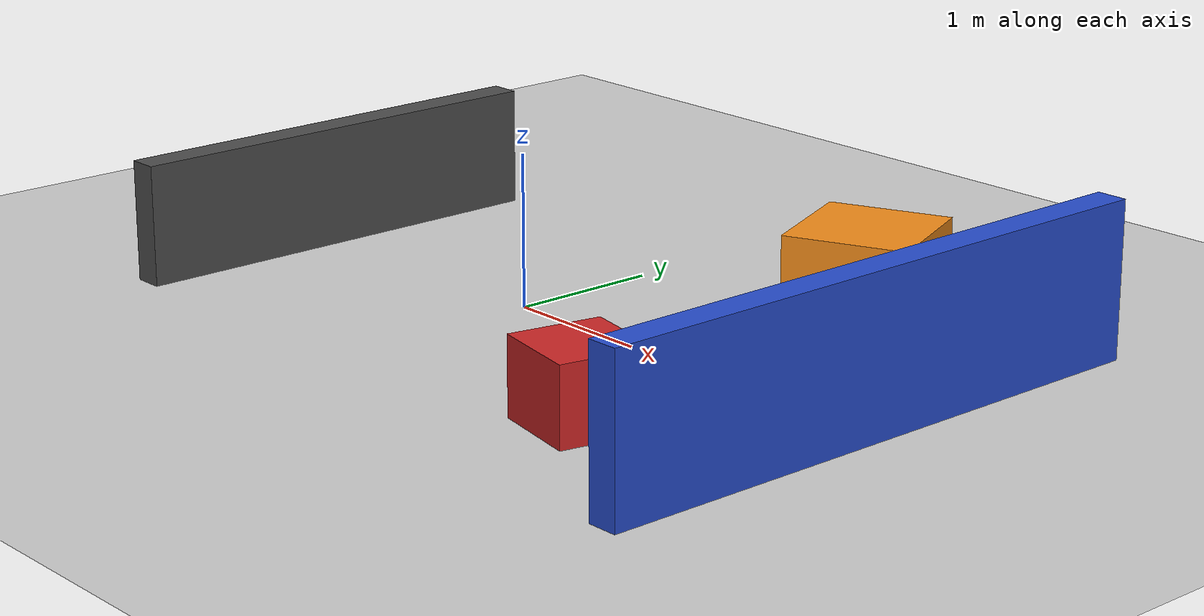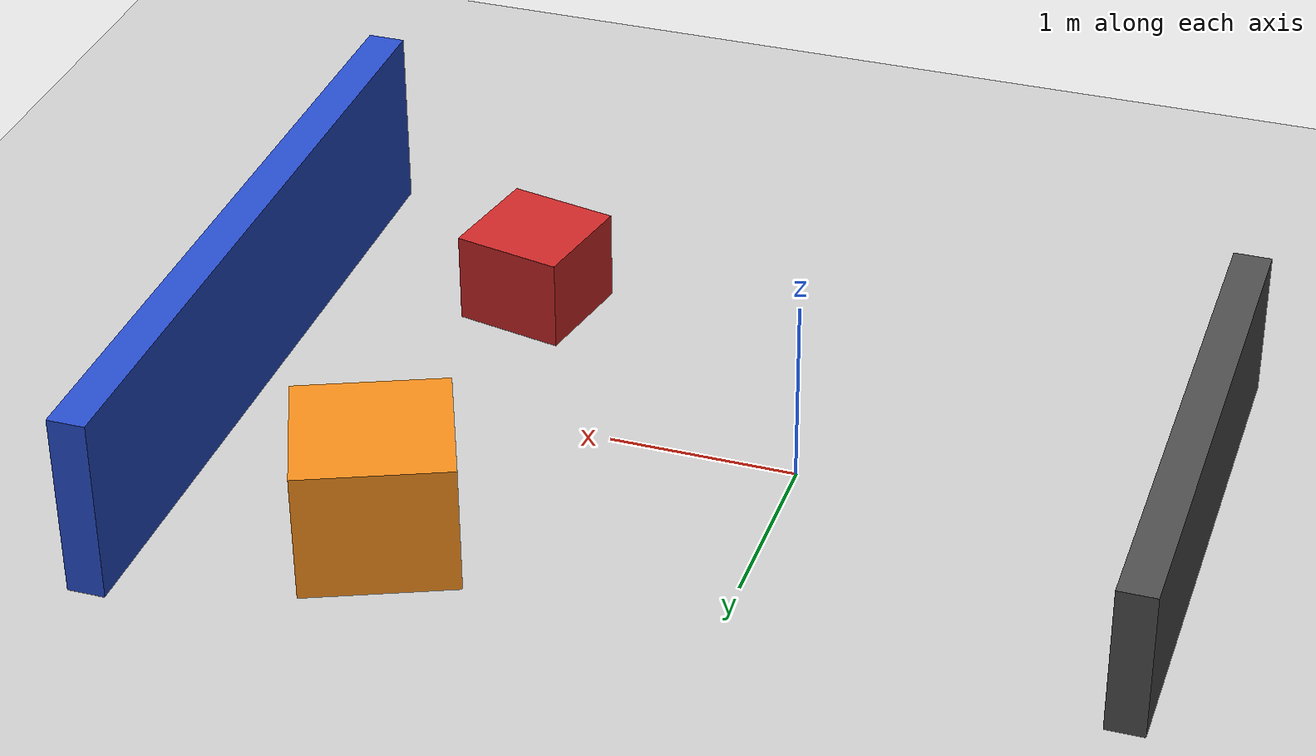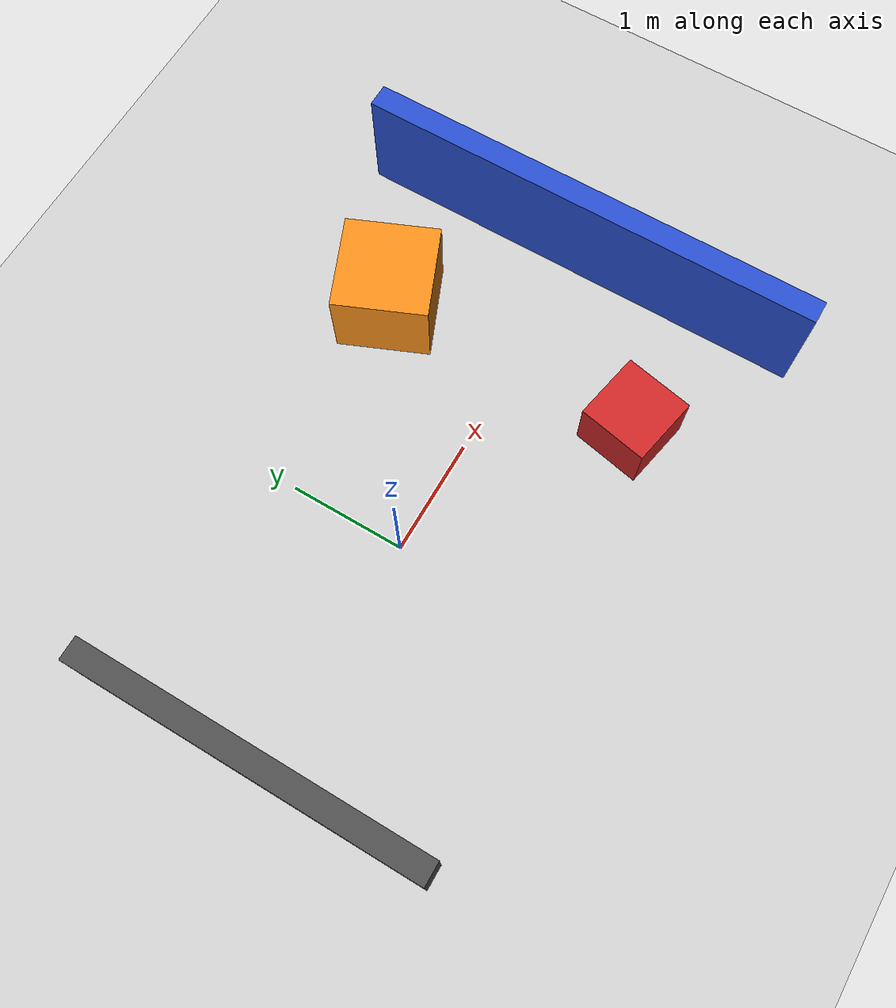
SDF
<sdf version='1.7'>
  <world name='lidar_lab'>
    <gui fullscreen='0'>
      <camera name='user_camera'>
        <pose>-2.2 -2.4 1.35 0 0.28 0.78</pose>
        <view_controller>orbit</view_controller>
        <projection_type>perspective</projection_type>
      </camera>
    </gui>

    <light name='sun' type='directional'>
      <cast_shadows>1</cast_shadows>
      <pose>0 0 10 0 0 0</pose>
      <diffuse>0.8 0.8 0.8 1</diffuse>
      <specular>0.2 0.2 0.2 1</specular>
      <attenuation>
        <range>1000</range>
        <constant>0.9</constant>
        <linear>0.01</linear>
        <quadratic>0.001</quadratic>
      </attenuation>
      <direction>-0.4 0.2 -0.9</direction>
    </light>

    <gravity>0 0 -9.8</gravity>
    <magnetic_field>6e-06 2.3e-05 -4.2e-05</magnetic_field>
    <atmosphere type='adiabatic'/>

    <physics type='ode'>
      <max_step_size>0.001</max_step_size>
      <real_time_factor>1</real_time_factor>
      <real_time_update_rate>1000</real_time_update_rate>
    </physics>

    <scene>
      <ambient>0.45 0.45 0.45 1</ambient>
      <background>0.7 0.7 0.72 1</background>
      <shadows>1</shadows>
    </scene>

    <model name='ground_plane'>
      <static>1</static>
      <link name='link'>
        <collision name='collision'>
          <geometry>
            <plane>
              <normal>0 0 1</normal>
              <size>80 80</size>
            </plane>
          </geometry>
        </collision>
        <visual name='visual'>
          <cast_shadows>0</cast_shadows>
          <geometry>
            <plane>
              <normal>0 0 1</normal>
              <size>80 80</size>
            </plane>
          </geometry>
          <material>
            <script>
              <uri>file://media/materials/scripts/gazebo.material</uri>
              <name>Gazebo/Grey</name>
            </script>
          </material>
        </visual>
      </link>
    </model>

    <model name='front_wall'>
      <static>1</static>
      <pose>3.0 0.0 0.5 0 0 0</pose>
      <link name='link'>
        <collision name='collision'>
          <geometry>
            <box>
              <size>0.2 4.0 1.0</size>
            </box>
          </geometry>
        </collision>
        <visual name='visual'>
          <geometry>
            <box>
              <size>0.2 4.0 1.0</size>
            </box>
          </geometry>
          <material>
            <script>
              <uri>file://media/materials/scripts/gazebo.material</uri>
              <name>Gazebo/Blue</name>
            </script>
          </material>
        </visual>
      </link>
    </model>

    <model name='left_box'>
      <static>1</static>
      <pose>1.8 1.2 0.35 0 0 0.4</pose>
      <link name='link'>
        <collision name='collision'>
          <geometry>
            <box>
              <size>0.8 0.8 0.7</size>
            </box>
          </geometry>
        </collision>
        <visual name='visual'>
          <geometry>
            <box>
              <size>0.8 0.8 0.7</size>
            </box>
          </geometry>
          <material>
            <script>
              <uri>file://media/materials/scripts/gazebo.material</uri>
              <name>Gazebo/Orange</name>
            </script>
          </material>
        </visual>
      </link>
    </model>

    <model name='right_box'>
      <static>1</static>
      <pose>1.8 -1.1 0.25 0 0 -0.2</pose>
      <link name='link'>
        <collision name='collision'>
          <geometry>
            <box>
              <size>0.6 0.6 0.5</size>
            </box>
          </geometry>
        </collision>
        <visual name='visual'>
          <geometry>
            <box>
              <size>0.6 0.6 0.5</size>
            </box>
          </geometry>
          <material>
            <script>
              <uri>file://media/materials/scripts/gazebo.material</uri>
              <name>Gazebo/Red</name>
            </script>
          </material>
        </visual>
      </link>
    </model>

    <model name='rear_wall'>
      <static>1</static>
      <pose>-2.0 0.0 0.4 0 0 0</pose>
      <link name='link'>
        <collision name='collision'>
          <geometry>
            <box>
              <size>0.2 3.0 0.8</size>
            </box>
          </geometry>
        </collision>
        <visual name='visual'>
          <geometry>
            <box>
              <size>0.2 3.0 0.8</size>
            </box>
          </geometry>
          <material>
            <script>
              <uri>file://media/materials/scripts/gazebo.material</uri>
              <name>Gazebo/DarkGrey</name>
            </script>
          </material>
        </visual>
      </link>
    </model>
  </world>
</sdf>
